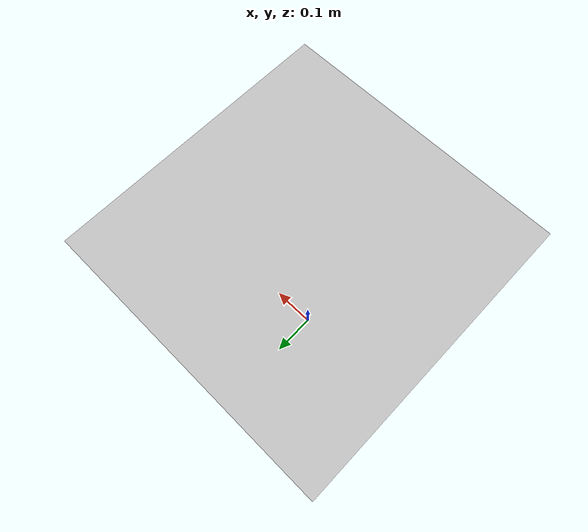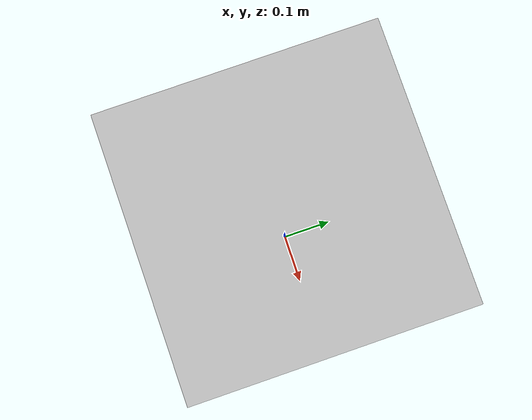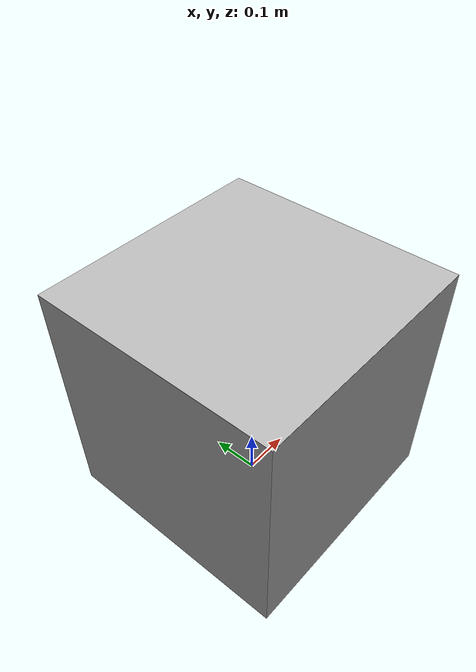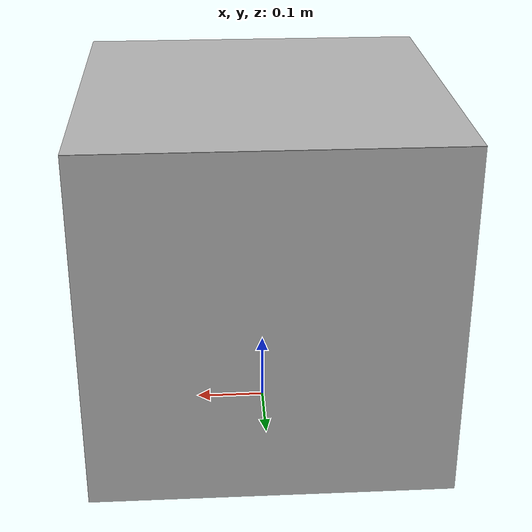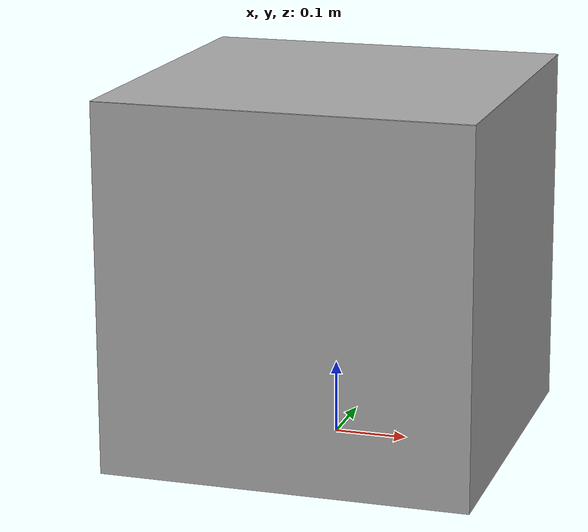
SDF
<?xml version="1.0"?>
<sdf version="1.5">
    <model name="box-50">
        <static>true</static>
        <link name="box-50_link">
            <pose>0.0 0.0 0.25 0 0 0</pose>
            <visual name="visual_box-50">
                <cast_shadows>false</cast_shadows>
                <geometry>
                    <box>
                        <size>0.5 0.5 0.5</size>
                    </box>
                </geometry>
                <material>
                    <script>
                        <uri>file://media/materials/scripts/gazebo.material</uri>
                        <name>Gazebo/Grey</name>
                    </script>
                </material>
            </visual>

            <collision name="collision_box-25">
                <geometry>
                    <box>
                        <size>0.5 0.5 0.5</size>
                    </box>
                </geometry>
            </collision>
        </link>

        <link name="box-50-clever_link">
            <pose>0.0 0.0 0.5 0 0 0</pose>
            <visual name="visual_box-50-clever">
                <cast_shadows>false</cast_shadows>
                <geometry>
                    <box>
                        <size>0.5 0.5 1e-3</size>
                    </box>
                </geometry>
                <material>
                    <script>
                        <uri>model://box-50/materials/scripts</uri>
                        <uri>model://box-50/materials/textures</uri>
                        <name>box50/qr-code</name>
                    </script>
                </material>
            </visual>
        </link>
    </model>
</sdf>
